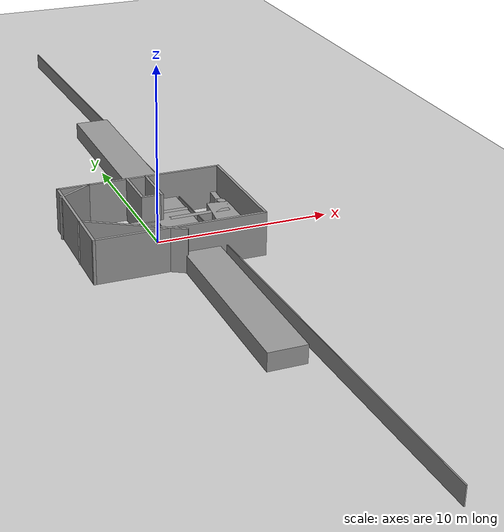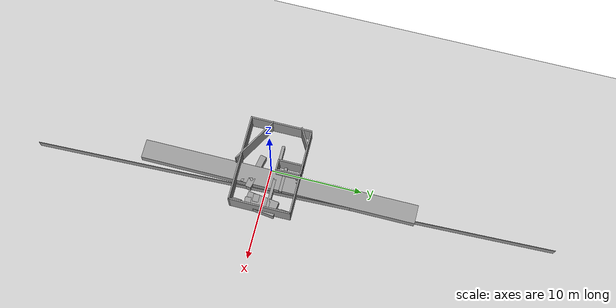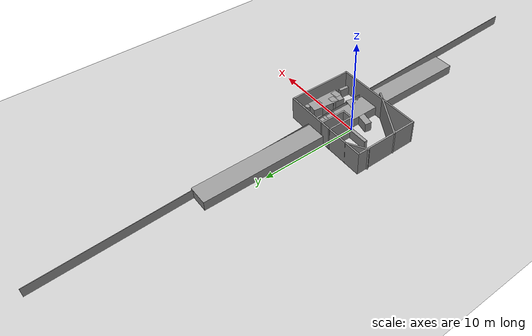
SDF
<sdf version="1.7">
 <world name="default">
  <model name="ground_plane">
   <static>1</static>
   <link name="link">
    <collision name="collision">
     <geometry><plane><normal>0 0 1</normal><size>100 100</size></plane></geometry>
     <surface>
      <contact><collide_bitmask>65535</collide_bitmask></contact>
      <friction><ode><mu>100</mu><mu2>50</mu2></ode></friction>
     </surface>
    </collision>
    <visual name="visual">
     <cast_shadows>0</cast_shadows>
     <geometry><plane><normal>0 0 1</normal><size>100 100</size></plane></geometry>
     <material>
      <script><uri>file://media/materials/scripts/gazebo.material</uri><name>Gazebo/Grey</name></script>
     </material>
    </visual>
   </link>
  </model>
  <model name="Untitled">
   <pose>0.040154 -0.243449 0 0 -0 0</pose>
   <link name="Wall_19">
    <collision name="Wall_19_Collision">
     <geometry><box><size>9.5 0.15 2.5</size></box></geometry>
     <pose>0 0 1.25 0 -0 0</pose>
    </collision>
    <visual name="Wall_19_Visual">
     <pose>0 0 1.25 0 -0 0</pose>
     <geometry><box><size>9.5 0.15 2.5</size></box></geometry>
     <material>
      <script><uri>file://media/materials/scripts/gazebo.material</uri><name>Gazebo/Grey</name></script>
      <ambient>1 1 1 1</ambient>
     </material>
     <meta><layer>0</layer></meta>
    </visual>
    <pose>0.065155 -3.08057 0 0 -0 3.14159</pose>
   </link>
   <link name="Wall_24">
    <collision name="Wall_24_Collision">
     <geometry><box><size>6.75 0.15 2.5</size></box></geometry>
     <pose>0 0 1.25 0 -0 0</pose>
    </collision>
    <visual name="Wall_24_Visual">
     <pose>0 0 1.25 0 -0 0</pose>
     <geometry><box><size>6.75 0.15 2.5</size></box></geometry>
     <material>
      <script><uri>file://media/materials/scripts/gazebo.material</uri><name>Gazebo/Grey</name></script>
      <ambient>1 1 1 1</ambient>
     </material>
     <meta><layer>0</layer></meta>
    </visual>
    <pose>-4.60984 0.219426 0 0 -0 1.5708</pose>
   </link>
   <link name="Wall_25">
    <collision name="Wall_25_Collision">
     <geometry><box><size>9.5 0.15 2.5</size></box></geometry>
     <pose>0 0 1.25 0 -0 0</pose>
    </collision>
    <visual name="Wall_25_Visual">
     <pose>0 0 1.25 0 -0 0</pose>
     <geometry><box><size>9.5 0.15 2.5</size></box></geometry>
     <material>
      <script><uri>file://media/materials/scripts/gazebo.material</uri><name>Gazebo/Grey</name></script>
      <ambient>1 1 1 1</ambient>
     </material>
     <meta><layer>0</layer></meta>
    </visual>
    <pose>0.065155 3.51943 0 0 -0 0</pose>
   </link>
   <link name="Wall_26">
    <collision name="Wall_26_Collision">
     <geometry><box><size>6.75 0.15 2.5</size></box></geometry>
     <pose>0 0 1.25 0 -0 0</pose>
    </collision>
    <visual name="Wall_26_Visual">
     <pose>0 0 1.25 0 -0 0</pose>
     <geometry><box><size>6.75 0.15 2.5</size></box></geometry>
     <material>
      <script><uri>file://media/materials/scripts/gazebo.material</uri><name>Gazebo/Grey</name></script>
      <ambient>1 1 1 1</ambient>
     </material>
     <meta><layer>0</layer></meta>
    </visual>
    <pose>4.74015 0.219426 0 0 -0 -1.5708</pose>
   </link>
   <link name="Wall_28">
    <collision name="Wall_28_Collision">
     <geometry><box><size>2.75 0.15 2.5</size></box></geometry>
     <pose>0 0 1.25 0 -0 0</pose>
    </collision>
    <visual name="Wall_28_Visual">
     <pose>0 0 1.25 0 -0 0</pose>
     <geometry><box><size>2.75 0.15 2.5</size></box></geometry>
     <material>
      <script><uri>file://media/materials/scripts/gazebo.material</uri><name>Gazebo/Grey</name></script>
      <ambient>1 1 1 1</ambient>
     </material>
     <meta><layer>0</layer></meta>
    </visual>
    <pose>-0.655321 2.23877 0 0 -0 -1.5708</pose>
   </link>
   <link name="Wall_29">
    <collision name="Wall_29_Collision">
     <geometry><box><size>1.25 0.15 2.5</size></box></geometry>
     <pose>0 0 1.25 0 -0 0</pose>
    </collision>
    <visual name="Wall_29_Visual">
     <pose>0 0 1.25 0 -0 0</pose>
     <geometry><box><size>1.25 0.15 2.5</size></box></geometry>
     <material>
      <script><uri>file://media/materials/scripts/gazebo.material</uri><name>Gazebo/Grey</name></script>
      <ambient>1 1 1 1</ambient>
     </material>
     <meta><layer>0</layer></meta>
    </visual>
    <pose>-0.105321 0.938769 0 0 -0 0</pose>
   </link>
   <link name="Wall_30">
    <collision name="Wall_30_Collision">
     <geometry><box><size>2.75 0.15 2.5</size></box></geometry>
     <pose>0 0 1.25 0 -0 0</pose>
    </collision>
    <visual name="Wall_30_Visual">
     <pose>0 0 1.25 0 -0 0</pose>
     <geometry><box><size>2.75 0.15 2.5</size></box></geometry>
     <material>
      <script><uri>file://media/materials/scripts/gazebo.material</uri><name>Gazebo/Grey</name></script>
      <ambient>1 1 1 1</ambient>
     </material>
     <meta><layer>0</layer></meta>
    </visual>
    <pose>0.444679 2.23877 0 0 -0 1.5708</pose>
   </link>
   <link name="Wall_32">
    <collision name="Wall_32_Collision">
     <geometry><box><size>2.25 0.15 2.5</size></box></geometry>
     <pose>0 0 1.25 0 -0 0</pose>
    </collision>
    <visual name="Wall_32_Visual">
     <pose>0 0 1.25 0 -0 0</pose>
     <geometry><box><size>2.25 0.15 2.5</size></box></geometry>
     <material>
      <script><uri>file://media/materials/scripts/gazebo.material</uri><name>Gazebo/Grey</name></script>
      <ambient>1 1 1 1</ambient>
     </material>
     <meta><layer>0</layer></meta>
    </visual>
    <pose>-3.80338 2.97879 0 0 -0 -2.61799</pose>
   </link>
   <link name="Wall_34">
    <collision name="Wall_34_Collision">
     <geometry><box><size>5.75 0.15 2.5</size></box></geometry>
     <pose>0 0 1.25 0 -0 0</pose>
    </collision>
    <visual name="Wall_34_Visual">
     <pose>0 0 1.25 0 -0 0</pose>
     <geometry><box><size>5.75 0.15 2.5</size></box></geometry>
     <material>
      <script><uri>file://media/materials/scripts/gazebo.material</uri><name>Gazebo/Grey</name></script>
      <ambient>1 1 1 1</ambient>
     </material>
     <meta><layer>0</layer></meta>
    </visual>
    <pose>-2.21818 -2.11132 0 0 -0 -0.523599</pose>
   </link>
   <static>1</static>
  </model>
  <model name="unit_box">
   <pose>2.42107 3.00637 0.499918 -2e-06 -6.3e-05 0.032221</pose>
   <link name="link">
    <inertial>
     <mass>1</mass>
     <inertia>
      <ixx>0.166667</ixx>
      <ixy>0</ixy>
      <ixz>0</ixz>
      <iyy>0.166667</iyy>
      <iyz>0</iyz>
      <izz>0.166667</izz>
     </inertia>
    </inertial>
    <collision name="collision"><geometry><box><size>0.0555408 56.0538 1</size></box></geometry></collision>
    <visual name="visual">
     <geometry><box><size>0.0555408 56.0538 1</size></box></geometry>
     <material>
      <script><name>Gazebo/Grey</name><uri>file://media/materials/scripts/gazebo.material</uri></script>
     </material>
    </visual>
   </link>
  </model>
  <model name="unit_box_0">
   <pose>4.11484 -0.050993 0.499995 2e-06 1e-05 -0.127226</pose>
   <link name="link">
    <inertial>
     <mass>1</mass>
     <inertia>
      <ixx>0.166667</ixx>
      <ixy>0</ixy>
      <ixz>0</ixz>
      <iyy>0.166667</iyy>
      <iyz>0</iyz>
      <izz>0.166667</izz>
     </inertia>
    </inertial>
    <collision name="collision"><geometry><box><size>1.64847 3.43222 1</size></box></geometry></collision>
    <visual name="visual">
     <geometry><box><size>1.64847 3.43222 1</size></box></geometry>
     <material>
      <script><name>Gazebo/Grey</name><uri>file://media/materials/scripts/gazebo.material</uri></script>
     </material>
    </visual>
   </link>
  </model>
  <model name="unit_box_0_clone">
   <pose>3.62881 -0.730656 0.5 0 0 -0.006055</pose>
   <link name="link">
    <inertial>
     <mass>1</mass>
     <inertia>
      <ixx>0.166667</ixx>
      <ixy>0</ixy>
      <ixz>0</ixz>
      <iyy>0.166667</iyy>
      <iyz>0</iyz>
      <izz>0.166667</izz>
     </inertia>
    </inertial>
    <collision name="collision"><geometry><box><size>0.846525 0.662942 1</size></box></geometry></collision>
    <visual name="visual">
     <geometry><box><size>0.846525 0.662942 1</size></box></geometry>
     <material>
      <script><name>Gazebo/Grey</name><uri>file://media/materials/scripts/gazebo.material</uri></script>
     </material>
    </visual>
   </link>
  </model>
  <model name="unit_box_0_clone_0">
   <pose>1.55427 -2.0112 0.5 0 -0 0.275134</pose>
   <link name="link">
    <inertial>
     <mass>1</mass>
     <inertia>
      <ixx>0.166667</ixx>
      <ixy>0</ixy>
      <ixz>0</ixz>
      <iyy>0.166667</iyy>
      <iyz>0</iyz>
      <izz>0.166667</izz>
     </inertia>
    </inertial>
    <collision name="collision"><geometry><box><size>0.846525 0.662942 1</size></box></geometry></collision>
    <visual name="visual">
     <geometry><box><size>0.846525 0.662942 1</size></box></geometry>
     <material>
      <script><name>Gazebo/Grey</name><uri>file://media/materials/scripts/gazebo.material</uri></script>
     </material>
    </visual>
   </link>
  </model>
  <model name="unit_box_0_clone_1">
   <pose>4.14531 -1.49621 0.499995 -2e-06 1e-05 0.106203</pose>
   <link name="link">
    <inertial>
     <mass>1</mass>
     <inertia>
      <ixx>0.166667</ixx>
      <ixy>0</ixy>
      <ixz>0</ixz>
      <iyy>0.166667</iyy>
      <iyz>0</iyz>
      <izz>0.166667</izz>
     </inertia>
    </inertial>
    <collision name="collision"><geometry><box><size>0.846525 0.662942 1</size></box></geometry></collision>
    <visual name="visual">
     <geometry><box><size>0.846525 0.662942 1</size></box></geometry>
     <material>
      <script><name>Gazebo/Grey</name><uri>file://media/materials/scripts/gazebo.material</uri></script>
     </material>
    </visual>
   </link>
  </model>
  <model name="unit_box_0_clone_2">
   <pose>1.75209 -2.84511 0.5 0 -0 0.006458</pose>
   <link name="link">
    <inertial>
     <mass>1</mass>
     <inertia>
      <ixx>0.166667</ixx>
      <ixy>0</ixy>
      <ixz>0</ixz>
      <iyy>0.166667</iyy>
      <iyz>0</iyz>
      <izz>0.166667</izz>
     </inertia>
    </inertial>
    <collision name="collision"><geometry><box><size>0.846525 0.662942 1</size></box></geometry></collision>
    <visual name="visual">
     <geometry><box><size>0.846525 0.662942 1</size></box></geometry>
     <material>
      <script><name>Gazebo/Grey</name><uri>file://media/materials/scripts/gazebo.material</uri></script>
     </material>
    </visual>
   </link>
  </model>
  <model name="unit_box_0_clone_3">
   <pose>0.781152 -1.50689 0.5 -0 -0 -0.201909</pose>
   <link name="link">
    <inertial>
     <mass>1</mass>
     <inertia>
      <ixx>0.166667</ixx>
      <ixy>0</ixy>
      <ixz>0</ixz>
      <iyy>0.166667</iyy>
      <iyz>0</iyz>
      <izz>0.166667</izz>
     </inertia>
    </inertial>
    <collision name="collision"><geometry><box><size>3.82685 0.662942 1</size></box></geometry></collision>
    <visual name="visual">
     <geometry><box><size>3.82685 0.662942 1</size></box></geometry>
     <material>
      <script><name>Gazebo/Grey</name><uri>file://media/materials/scripts/gazebo.material</uri></script>
     </material>
    </visual>
   </link>
  </model>
  <model name="unit_box_1">
   <pose>1.22142 1.15405 0.499996 -3e-06 9e-06 -0.000591</pose>
   <link name="link">
    <inertial>
     <mass>1</mass>
     <inertia>
      <ixx>0.166667</ixx>
      <ixy>0</ixy>
      <ixz>0</ixz>
      <iyy>0.166667</iyy>
      <iyz>0</iyz>
      <izz>0.166667</izz>
     </inertia>
    </inertial>
    <collision name="collision"><geometry><box><size>2.04878 30.0005 1</size></box></geometry></collision>
    <visual name="visual">
     <geometry><box><size>2.04878 30.0005 1</size></box></geometry>
     <material>
      <script><name>Gazebo/Grey</name><uri>file://media/materials/scripts/gazebo.material</uri></script>
     </material>
    </visual>
   </link>
  </model>
  <model name="unit_box_1_clone">
   <pose>0.854096 0.674374 0.5 0 0 -0.00012</pose>
   <link name="link">
    <inertial>
     <mass>1</mass>
     <inertia>
      <ixx>0.166667</ixx>
      <ixy>0</ixy>
      <ixz>0</ixz>
      <iyy>0.166667</iyy>
      <iyz>0</iyz>
      <izz>0.166667</izz>
     </inertia>
    </inertial>
    <collision name="collision"><geometry><box><size>7.14566 0.321828 1</size></box></geometry></collision>
    <visual name="visual">
     <geometry><box><size>7.14566 0.321828 1</size></box></geometry>
     <material>
      <script><name>Gazebo/Grey</name><uri>file://media/materials/scripts/gazebo.material</uri></script>
     </material>
    </visual>
   </link>
  </model>
  <model name="unit_box_1_clone_0">
   <pose>0.944126 1.54933 0.5 -0 -0 -5e-06</pose>
   <link name="link">
    <inertial>
     <mass>1</mass>
     <inertia>
      <ixx>0.166667</ixx>
      <ixy>0</ixy>
      <ixz>0</ixz>
      <iyy>0.166667</iyy>
      <iyz>0</iyz>
      <izz>0.166667</izz>
     </inertia>
    </inertial>
    <collision name="collision"><geometry><box><size>2.72451 0.321828 1</size></box></geometry></collision>
    <visual name="visual">
     <geometry><box><size>2.72451 0.321828 1</size></box></geometry>
     <material>
      <script><name>Gazebo/Grey</name><uri>file://media/materials/scripts/gazebo.material</uri></script>
     </material>
    </visual>
   </link>
  </model>
  <model name="unit_box_1_clone_1">
   <pose>4.38867 2.60153 0.5 -1e-06 -0 1.49162</pose>
   <link name="link">
    <inertial>
     <mass>1</mass>
     <inertia>
      <ixx>0.166667</ixx>
      <ixy>0</ixy>
      <ixz>0</ixz>
      <iyy>0.166667</iyy>
      <iyz>0</iyz>
      <izz>0.166667</izz>
     </inertia>
    </inertial>
    <collision name="collision"><geometry><box><size>1 0.321828 1</size></box></geometry></collision>
    <visual name="visual">
     <geometry><box><size>1 0.321828 1</size></box></geometry>
     <material>
      <script><name>Gazebo/Grey</name><uri>file://media/materials/scripts/gazebo.material</uri></script>
     </material>
    </visual>
   </link>
  </model>
  <model name="unit_cylinder_0_clone_1_clone">
   <pose>4.44032 1.84705 0.499992 1e-06 0 -0.005721</pose>
   <link name="link">
    <inertial>
     <mass>1</mass>
     <inertia><ixx>0.145833</ixx><ixy>0</ixy><ixz>0</ixz><iyy>0.145833</iyy><iyz>0</iyz><izz>0.125</izz></inertia>
    </inertial>
    <collision name="collision">
     <geometry><cylinder><radius>0.248018</radius><length>1</length></cylinder></geometry>
    </collision>
    <visual name="visual">
     <geometry><cylinder><radius>0.248018</radius><length>1</length></cylinder></geometry>
     <material>
      <script><name>Gazebo/Grey</name><uri>file://media/materials/scripts/gazebo.material</uri></script>
     </material>
    </visual>
   </link>
  </model>
  <model name="unit_cylinder_0_clone_1_clone_0">
   <pose>0.853981 2.87092 0.499992 1e-06 -1e-06 -2.2e-05</pose>
   <link name="link">
    <inertial>
     <mass>1</mass>
     <inertia><ixx>0.145833</ixx><ixy>0</ixy><ixz>0</ixz><iyy>0.145833</iyy><iyz>0</iyz><izz>0.125</izz></inertia>
    </inertial>
    <collision name="collision">
     <geometry><cylinder><radius>0.248018</radius><length>1</length></cylinder></geometry>
    </collision>
    <visual name="visual">
     <geometry><cylinder><radius>0.248018</radius><length>1</length></cylinder></geometry>
     <material>
      <script><name>Gazebo/Grey</name><uri>file://media/materials/scripts/gazebo.material</uri></script>
     </material>
    </visual>
   </link>
  </model>
  <model name="unit_cylinder_0_clone_0_clone_clone_0">
   <pose>0.958132 -3.00951 0.499997 0 0 -1.4e-05</pose>
   <link name="link">
    <inertial>
     <mass>1</mass>
     <inertia><ixx>0.145833</ixx><ixy>0</ixy><ixz>0</ixz><iyy>0.145833</iyy><iyz>0</iyz><izz>0.125</izz></inertia>
    </inertial>
    <collision name="collision">
     <geometry><cylinder><radius>0.159231</radius><length>1</length></cylinder></geometry>
    </collision>
    <visual name="visual">
     <geometry><cylinder><radius>0.159231</radius><length>1</length></cylinder></geometry>
     <material>
      <script><name>Gazebo/Grey</name><uri>file://media/materials/scripts/gazebo.material</uri></script>
     </material>
    </visual>
   </link>
  </model>
  <model name="unit_box_1_clone_1_clone">
   <pose>4.33945 -2.67163 0.5 -1e-06 -0 1.49162</pose>
   <link name="link">
    <inertial>
     <mass>1</mass>
     <inertia>
      <ixx>0.166667</ixx>
      <ixy>0</ixy>
      <ixz>0</ixz>
      <iyy>0.166667</iyy>
      <iyz>0</iyz>
      <izz>0.166667</izz>
     </inertia>
    </inertial>
    <collision name="collision"><geometry><box><size>1 0.321828 1</size></box></geometry></collision>
    <visual name="visual">
     <geometry><box><size>1 0.321828 1</size></box></geometry>
     <material>
      <script><name>Gazebo/Grey</name><uri>file://media/materials/scripts/gazebo.material</uri></script>
     </material>
    </visual>
   </link>
  </model>
  <model name="unit_cylinder_0_clone_0_clone_clone_clone">
   <pose>4.53405 1.42138 0.499993 0 -0 -0.000111</pose>
   <link name="link">
    <inertial>
     <mass>1</mass>
     <inertia><ixx>0.145833</ixx><ixy>0</ixy><ixz>0</ixz><iyy>0.145833</iyy><iyz>0</iyz><izz>0.125</izz></inertia>
    </inertial>
    <collision name="collision">
     <geometry><cylinder><radius>0.159231</radius><length>1</length></cylinder></geometry>
    </collision>
    <visual name="visual">
     <geometry><cylinder><radius>0.159231</radius><length>1</length></cylinder></geometry>
     <material>
      <script><name>Gazebo/Grey</name><uri>file://media/materials/scripts/gazebo.material</uri></script>
     </material>
    </visual>
   </link>
  </model>
 </world>
</sdf>
